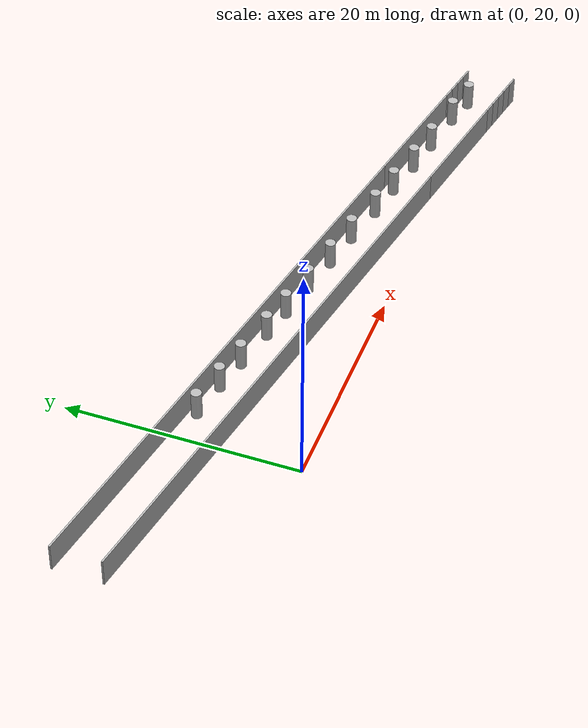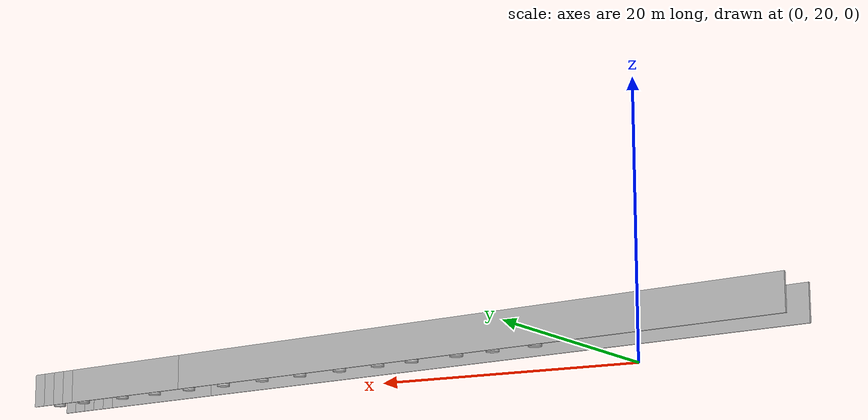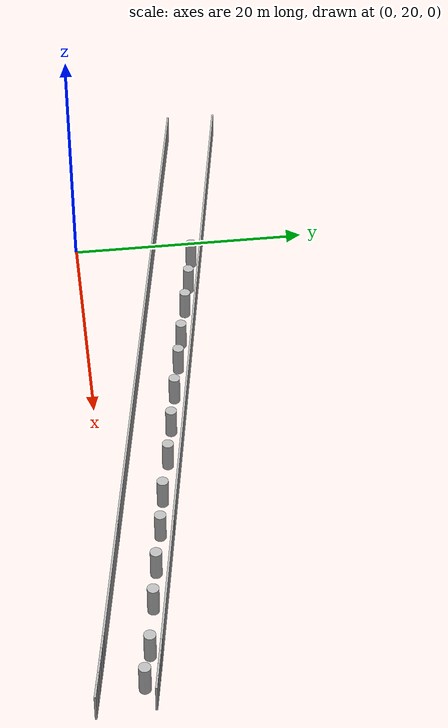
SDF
<?xml version="1.0" ?>
<sdf version="1.6">
  <model name="sps_2946">
    <pose frame="">0 0 0 0 -0 0</pose>
    <static>1</static>
    <self_collide>0</self_collide>
    <allow_auto_disable>0</allow_auto_disable>
    <link name="Wall71">
      <kinematic>0</kinematic>
      <gravity>1</gravity>
      <self_collide>0</self_collide>
      <collision name="collision">
        <geometry>
          <box>
            <size>50.8158 0.15 2.5</size>
          </box>
        </geometry>
        <pose frame="">0 0 0 0 -0 0</pose>
      </collision>
      <visual name="visual">
        <geometry>
          <box>
            <size>50.8158 0.15 2.5</size>
          </box>
        </geometry>
        <pose frame="">0 0 0 0 -0 0</pose>
        <cast_shadows>1</cast_shadows>
        <transparency>0.0</transparency>
      </visual>
      <pose frame="">9.46944 29.4695 1.25 0 0 -0.179428</pose>
    </link>
    <link name="Wall72">
      <kinematic>0</kinematic>
      <gravity>1</gravity>
      <self_collide>0</self_collide>
      <collision name="collision">
        <geometry>
          <box>
            <size>11.6478 0.15 2.5</size>
          </box>
        </geometry>
        <pose frame="">0 0 0 0 -0 0</pose>
      </collision>
      <visual name="visual">
        <geometry>
          <box>
            <size>11.6478 0.15 2.5</size>
          </box>
        </geometry>
        <pose frame="">0 0 0 0 -0 0</pose>
        <cast_shadows>1</cast_shadows>
        <transparency>0.0</transparency>
      </visual>
      <pose frame="">40.1999 23.8957 1.25 0 0 -0.179428</pose>
    </link>
    <link name="Wall647">
      <kinematic>0</kinematic>
      <gravity>1</gravity>
      <self_collide>0</self_collide>
      <collision name="collision">
        <geometry>
          <box>
            <size>10.886 0.15 2.5</size>
          </box>
        </geometry>
        <pose frame="">0 0 0 0 -0 0</pose>
      </collision>
      <visual name="visual">
        <geometry>
          <box>
            <size>10.886 0.15 2.5</size>
          </box>
        </geometry>
        <pose frame="">0 0 0 0 -0 0</pose>
        <cast_shadows>1</cast_shadows>
        <transparency>0.0</transparency>
      </visual>
      <pose frame="">39.8251 19.7569 1.25 0 -0 2.96217</pose>
    </link>
    <link name="Wall648">
      <kinematic>0</kinematic>
      <gravity>1</gravity>
      <self_collide>0</self_collide>
      <collision name="collision">
        <geometry>
          <box>
            <size>50.8158 0.15 2.5</size>
          </box>
        </geometry>
        <pose frame="">0 0 0 0 -0 0</pose>
      </collision>
      <visual name="visual">
        <geometry>
          <box>
            <size>50.8158 0.15 2.5</size>
          </box>
        </geometry>
        <pose frame="">0 0 0 0 -0 0</pose>
        <cast_shadows>1</cast_shadows>
        <transparency>0.0</transparency>
      </visual>
      <pose frame="">9.46944 25.2626 1.25 0 -0 2.96217</pose>
    </link>
    <link name="Wall8141">
      <kinematic>0</kinematic>
      <gravity>1</gravity>
      <self_collide>0</self_collide>
      <collision name="collision">
        <geometry>
          <box>
            <size>1.07598 0.15 2.5</size>
          </box>
        </geometry>
        <pose frame="">0 0 0 0 -0 0</pose>
      </collision>
      <visual name="visual">
        <geometry>
          <box>
            <size>1.07598 0.15 2.5</size>
          </box>
        </geometry>
        <pose frame="">0 0 0 0 -0 0</pose>
        <cast_shadows>1</cast_shadows>
        <transparency>0.0</transparency>
      </visual>
      <pose frame="">49.9402 17.8966 1.25 0 -0 2.95444</pose>
    </link>
    <link name="Wall8142">
      <kinematic>0</kinematic>
      <gravity>1</gravity>
      <self_collide>0</self_collide>
      <collision name="collision">
        <geometry>
          <box>
            <size>1.07593 0.15 2.5</size>
          </box>
        </geometry>
        <pose frame="">0 0 0 0 -0 0</pose>
      </collision>
      <visual name="visual">
        <geometry>
          <box>
            <size>1.07593 0.15 2.5</size>
          </box>
        </geometry>
        <pose frame="">0 0 0 0 -0 0</pose>
        <cast_shadows>1</cast_shadows>
        <transparency>0.0</transparency>
      </visual>
      <pose frame="">48.883 18.0962 1.25 0 -0 2.95559</pose>
    </link>
    <link name="Wall8143">
      <kinematic>0</kinematic>
      <gravity>1</gravity>
      <self_collide>0</self_collide>
      <collision name="collision">
        <geometry>
          <box>
            <size>1.07596 0.15 2.5</size>
          </box>
        </geometry>
        <pose frame="">0 0 0 0 -0 0</pose>
      </collision>
      <visual name="visual">
        <geometry>
          <box>
            <size>1.07596 0.15 2.5</size>
          </box>
        </geometry>
        <pose frame="">0 0 0 0 -0 0</pose>
        <cast_shadows>1</cast_shadows>
        <transparency>0.0</transparency>
      </visual>
      <pose frame="">47.8255 18.2946 1.25 0 -0 2.95669</pose>
    </link>
    <link name="Wall8144">
      <kinematic>0</kinematic>
      <gravity>1</gravity>
      <self_collide>0</self_collide>
      <collision name="collision">
        <geometry>
          <box>
            <size>1.07609 0.15 2.5</size>
          </box>
        </geometry>
        <pose frame="">0 0 0 0 -0 0</pose>
      </collision>
      <visual name="visual">
        <geometry>
          <box>
            <size>1.07609 0.15 2.5</size>
          </box>
        </geometry>
        <pose frame="">0 0 0 0 -0 0</pose>
        <cast_shadows>1</cast_shadows>
        <transparency>0.0</transparency>
      </visual>
      <pose frame="">46.7677 18.4918 1.25 0 -0 2.95787</pose>
    </link>
    <link name="Wall8145">
      <kinematic>0</kinematic>
      <gravity>1</gravity>
      <self_collide>0</self_collide>
      <collision name="collision">
        <geometry>
          <box>
            <size>1.07587 0.15 2.5</size>
          </box>
        </geometry>
        <pose frame="">0 0 0 0 -0 0</pose>
      </collision>
      <visual name="visual">
        <geometry>
          <box>
            <size>1.07587 0.15 2.5</size>
          </box>
        </geometry>
        <pose frame="">0 0 0 0 -0 0</pose>
        <cast_shadows>1</cast_shadows>
        <transparency>0.0</transparency>
      </visual>
      <pose frame="">45.7097 18.6878 1.25 0 -0 2.95898</pose>
    </link>
    <link name="Wall9107">
      <kinematic>0</kinematic>
      <gravity>1</gravity>
      <self_collide>0</self_collide>
      <collision name="collision">
        <geometry>
          <box>
            <size>1.08064 0.15 2.5</size>
          </box>
        </geometry>
        <pose frame="">0 0 0 0 -0 0</pose>
      </collision>
      <visual name="visual">
        <geometry>
          <box>
            <size>1.08064 0.15 2.5</size>
          </box>
        </geometry>
        <pose frame="">0 0 0 0 -0 0</pose>
        <cast_shadows>1</cast_shadows>
        <transparency>0.0</transparency>
      </visual>
      <pose frame="">49.6486 22.1638 1.25 0 -0 2.95566</pose>
    </link>
    <link name="Wall9108">
      <kinematic>0</kinematic>
      <gravity>1</gravity>
      <self_collide>0</self_collide>
      <collision name="collision">
        <geometry>
          <box>
            <size>1.08064 0.15 2.5</size>
          </box>
        </geometry>
        <pose frame="">0 0 0 0 -0 0</pose>
      </collision>
      <visual name="visual">
        <geometry>
          <box>
            <size>1.08064 0.15 2.5</size>
          </box>
        </geometry>
        <pose frame="">0 0 0 0 -0 0</pose>
        <cast_shadows>1</cast_shadows>
        <transparency>0.0</transparency>
      </visual>
      <pose frame="">48.5865 22.3631 1.25 0 -0 2.95658</pose>
    </link>
    <link name="Wall9109">
      <kinematic>0</kinematic>
      <gravity>1</gravity>
      <self_collide>0</self_collide>
      <collision name="collision">
        <geometry>
          <box>
            <size>1.08074 0.15 2.5</size>
          </box>
        </geometry>
        <pose frame="">0 0 0 0 -0 0</pose>
      </collision>
      <visual name="visual">
        <geometry>
          <box>
            <size>1.08074 0.15 2.5</size>
          </box>
        </geometry>
        <pose frame="">0 0 0 0 -0 0</pose>
        <cast_shadows>1</cast_shadows>
        <transparency>0.0</transparency>
      </visual>
      <pose frame="">47.5242 22.5612 1.25 0 -0 2.95792</pose>
    </link>
    <link name="Wall9110">
      <kinematic>0</kinematic>
      <gravity>1</gravity>
      <self_collide>0</self_collide>
      <collision name="collision">
        <geometry>
          <box>
            <size>1.08062 0.15 2.5</size>
          </box>
        </geometry>
        <pose frame="">0 0 0 0 -0 0</pose>
      </collision>
      <visual name="visual">
        <geometry>
          <box>
            <size>1.08062 0.15 2.5</size>
          </box>
        </geometry>
        <pose frame="">0 0 0 0 -0 0</pose>
        <cast_shadows>1</cast_shadows>
        <transparency>0.0</transparency>
      </visual>
      <pose frame="">46.4616 22.7581 1.25 0 -0 2.95882</pose>
    </link>
    <link name="Cylinder11376">
      <kinematic>0</kinematic>
      <gravity>1</gravity>
      <self_collide>0</self_collide>
      <collision name="collision">
        <geometry>
          <cylinder>
            <radius>0.4518338297493756</radius>
            <length>2.5</length>
          </cylinder>
        </geometry>
        <pose frame="">0 0 0 0 -0 0</pose>
      </collision>
      <visual name="visual">
        <geometry>
          <cylinder>
            <radius>0.4518338297493756</radius>
            <length>2.5</length>
          </cylinder>
        </geometry>
        <pose frame="">0 0 0 0 -0 0</pose>
        <cast_shadows>1</cast_shadows>
        <transparency>0.0</transparency>
      </visual>
      <pose frame="">2.89152 29.8789 1.25 0 -0 0</pose>
    </link>
    <link name="Cylinder11377">
      <kinematic>0</kinematic>
      <gravity>1</gravity>
      <self_collide>0</self_collide>
      <collision name="collision">
        <geometry>
          <cylinder>
            <radius>0.4518338297493756</radius>
            <length>2.5</length>
          </cylinder>
        </geometry>
        <pose frame="">0 0 0 0 -0 0</pose>
      </collision>
      <visual name="visual">
        <geometry>
          <cylinder>
            <radius>0.4518338297493756</radius>
            <length>2.5</length>
          </cylinder>
        </geometry>
        <pose frame="">0 0 0 0 -0 0</pose>
        <cast_shadows>1</cast_shadows>
        <transparency>0.0</transparency>
      </visual>
      <pose frame="">6.28028 29.263 1.25 0 -0 0</pose>
    </link>
    <link name="Cylinder11378">
      <kinematic>0</kinematic>
      <gravity>1</gravity>
      <self_collide>0</self_collide>
      <collision name="collision">
        <geometry>
          <cylinder>
            <radius>0.4518338297493756</radius>
            <length>2.5</length>
          </cylinder>
        </geometry>
        <pose frame="">0 0 0 0 -0 0</pose>
      </collision>
      <visual name="visual">
        <geometry>
          <cylinder>
            <radius>0.4518338297493756</radius>
            <length>2.5</length>
          </cylinder>
        </geometry>
        <pose frame="">0 0 0 0 -0 0</pose>
        <cast_shadows>1</cast_shadows>
        <transparency>0.0</transparency>
      </visual>
      <pose frame="">9.31989 28.6266 1.25 0 -0 0</pose>
    </link>
    <link name="Cylinder11379">
      <kinematic>0</kinematic>
      <gravity>1</gravity>
      <self_collide>0</self_collide>
      <collision name="collision">
        <geometry>
          <cylinder>
            <radius>0.4518338297493756</radius>
            <length>2.5</length>
          </cylinder>
        </geometry>
        <pose frame="">0 0 0 0 -0 0</pose>
      </collision>
      <visual name="visual">
        <geometry>
          <cylinder>
            <radius>0.4518338297493756</radius>
            <length>2.5</length>
          </cylinder>
        </geometry>
        <pose frame="">0 0 0 0 -0 0</pose>
        <cast_shadows>1</cast_shadows>
        <transparency>0.0</transparency>
      </visual>
      <pose frame="">13.1646 27.867 1.25 0 -0 0</pose>
    </link>
    <link name="Cylinder11380">
      <kinematic>0</kinematic>
      <gravity>1</gravity>
      <self_collide>0</self_collide>
      <collision name="collision">
        <geometry>
          <cylinder>
            <radius>0.4518338297493756</radius>
            <length>2.5</length>
          </cylinder>
        </geometry>
        <pose frame="">0 0 0 0 -0 0</pose>
      </collision>
      <visual name="visual">
        <geometry>
          <cylinder>
            <radius>0.4518338297493756</radius>
            <length>2.5</length>
          </cylinder>
        </geometry>
        <pose frame="">0 0 0 0 -0 0</pose>
        <cast_shadows>1</cast_shadows>
        <transparency>0.0</transparency>
      </visual>
      <pose frame="">16.1426 27.3129 1.25 0 -0 0</pose>
    </link>
    <link name="Cylinder11381">
      <kinematic>0</kinematic>
      <gravity>1</gravity>
      <self_collide>0</self_collide>
      <collision name="collision">
        <geometry>
          <cylinder>
            <radius>0.4518338297493756</radius>
            <length>2.5</length>
          </cylinder>
        </geometry>
        <pose frame="">0 0 0 0 -0 0</pose>
      </collision>
      <visual name="visual">
        <geometry>
          <cylinder>
            <radius>0.4518338297493756</radius>
            <length>2.5</length>
          </cylinder>
        </geometry>
        <pose frame="">0 0 0 0 -0 0</pose>
        <cast_shadows>1</cast_shadows>
        <transparency>0.0</transparency>
      </visual>
      <pose frame="">19.6135 26.6149 1.25 0 -0 0</pose>
    </link>
    <link name="Cylinder11382">
      <kinematic>0</kinematic>
      <gravity>1</gravity>
      <self_collide>0</self_collide>
      <collision name="collision">
        <geometry>
          <cylinder>
            <radius>0.4518338297493756</radius>
            <length>2.5</length>
          </cylinder>
        </geometry>
        <pose frame="">0 0 0 0 -0 0</pose>
      </collision>
      <visual name="visual">
        <geometry>
          <cylinder>
            <radius>0.4518338297493756</radius>
            <length>2.5</length>
          </cylinder>
        </geometry>
        <pose frame="">0 0 0 0 -0 0</pose>
        <cast_shadows>1</cast_shadows>
        <transparency>0.0</transparency>
      </visual>
      <pose frame="">23.2898 25.958 1.25 0 -0 0</pose>
    </link>
    <link name="Cylinder11383">
      <kinematic>0</kinematic>
      <gravity>1</gravity>
      <self_collide>0</self_collide>
      <collision name="collision">
        <geometry>
          <cylinder>
            <radius>0.4518338297493756</radius>
            <length>2.5</length>
          </cylinder>
        </geometry>
        <pose frame="">0 0 0 0 -0 0</pose>
      </collision>
      <visual name="visual">
        <geometry>
          <cylinder>
            <radius>0.4518338297493756</radius>
            <length>2.5</length>
          </cylinder>
        </geometry>
        <pose frame="">0 0 0 0 -0 0</pose>
        <cast_shadows>1</cast_shadows>
        <transparency>0.0</transparency>
      </visual>
      <pose frame="">26.8839 25.3216 1.25 0 -0 0</pose>
    </link>
    <link name="Cylinder11384">
      <kinematic>0</kinematic>
      <gravity>1</gravity>
      <self_collide>0</self_collide>
      <collision name="collision">
        <geometry>
          <cylinder>
            <radius>0.4518338297493756</radius>
            <length>2.5</length>
          </cylinder>
        </geometry>
        <pose frame="">0 0 0 0 -0 0</pose>
      </collision>
      <visual name="visual">
        <geometry>
          <cylinder>
            <radius>0.4518338297493756</radius>
            <length>2.5</length>
          </cylinder>
        </geometry>
        <pose frame="">0 0 0 0 -0 0</pose>
        <cast_shadows>1</cast_shadows>
        <transparency>0.0</transparency>
      </visual>
      <pose frame="">34.2365 23.9667 1.25 0 -0 0</pose>
    </link>
    <link name="Cylinder11385">
      <kinematic>0</kinematic>
      <gravity>1</gravity>
      <self_collide>0</self_collide>
      <collision name="collision">
        <geometry>
          <cylinder>
            <radius>0.4518338297493756</radius>
            <length>2.5</length>
          </cylinder>
        </geometry>
        <pose frame="">0 0 0 0 -0 0</pose>
      </collision>
      <visual name="visual">
        <geometry>
          <cylinder>
            <radius>0.4518338297493756</radius>
            <length>2.5</length>
          </cylinder>
        </geometry>
        <pose frame="">0 0 0 0 -0 0</pose>
        <cast_shadows>1</cast_shadows>
        <transparency>0.0</transparency>
      </visual>
      <pose frame="">37.8378 23.2875 1.25 0 -0 0</pose>
    </link>
    <link name="Cylinder11386">
      <kinematic>0</kinematic>
      <gravity>1</gravity>
      <self_collide>0</self_collide>
      <collision name="collision">
        <geometry>
          <cylinder>
            <radius>0.4518338297493756</radius>
            <length>2.5</length>
          </cylinder>
        </geometry>
        <pose frame="">0 0 0 0 -0 0</pose>
      </collision>
      <visual name="visual">
        <geometry>
          <cylinder>
            <radius>0.4518338297493756</radius>
            <length>2.5</length>
          </cylinder>
        </geometry>
        <pose frame="">0 0 0 0 -0 0</pose>
        <cast_shadows>1</cast_shadows>
        <transparency>0.0</transparency>
      </visual>
      <pose frame="">41.2676 22.7332 1.25 0 -0 0</pose>
    </link>
    <link name="Cylinder11387">
      <kinematic>0</kinematic>
      <gravity>1</gravity>
      <self_collide>0</self_collide>
      <collision name="collision">
        <geometry>
          <cylinder>
            <radius>0.4518338297493756</radius>
            <length>2.5</length>
          </cylinder>
        </geometry>
        <pose frame="">0 0 0 0 -0 0</pose>
      </collision>
      <visual name="visual">
        <geometry>
          <cylinder>
            <radius>0.4518338297493756</radius>
            <length>2.5</length>
          </cylinder>
        </geometry>
        <pose frame="">0 0 0 0 -0 0</pose>
        <cast_shadows>1</cast_shadows>
        <transparency>0.0</transparency>
      </visual>
      <pose frame="">45.4779 22.0763 1.25 0 -0 0</pose>
    </link>
    <link name="Cylinder11388">
      <kinematic>0</kinematic>
      <gravity>1</gravity>
      <self_collide>0</self_collide>
      <collision name="collision">
        <geometry>
          <cylinder>
            <radius>0.4518338297493756</radius>
            <length>2.5</length>
          </cylinder>
        </geometry>
        <pose frame="">0 0 0 0 -0 0</pose>
      </collision>
      <visual name="visual">
        <geometry>
          <cylinder>
            <radius>0.4518338297493756</radius>
            <length>2.5</length>
          </cylinder>
        </geometry>
        <pose frame="">0 0 0 0 -0 0</pose>
        <cast_shadows>1</cast_shadows>
        <transparency>0.0</transparency>
      </visual>
      <pose frame="">48.2916 21.4399 1.25 0 -0 0</pose>
    </link>
    <link name="Cylinder11389">
      <kinematic>0</kinematic>
      <gravity>1</gravity>
      <self_collide>0</self_collide>
      <collision name="collision">
        <geometry>
          <cylinder>
            <radius>0.4518338297493756</radius>
            <length>2.5</length>
          </cylinder>
        </geometry>
        <pose frame="">0 0 0 0 -0 0</pose>
      </collision>
      <visual name="visual">
        <geometry>
          <cylinder>
            <radius>0.4518338297493756</radius>
            <length>2.5</length>
          </cylinder>
        </geometry>
        <pose frame="">0 0 0 0 -0 0</pose>
        <cast_shadows>1</cast_shadows>
        <transparency>0.0</transparency>
      </visual>
      <pose frame="">30.7994 24.5041 1.25 0 -0 0</pose>
    </link>
  </model>
</sdf>
